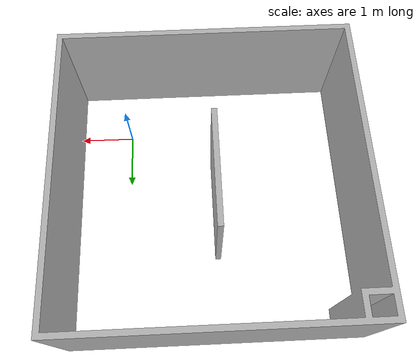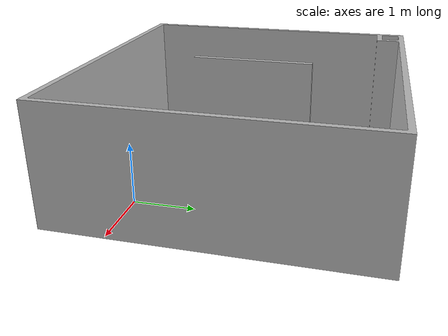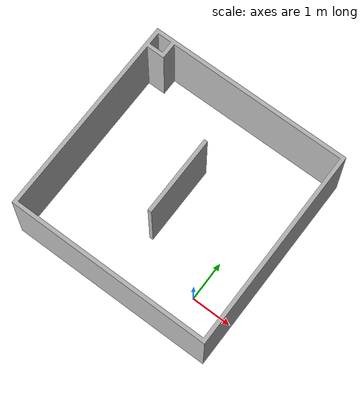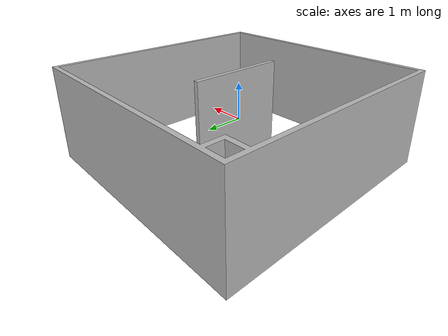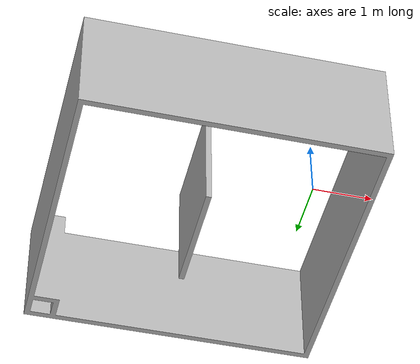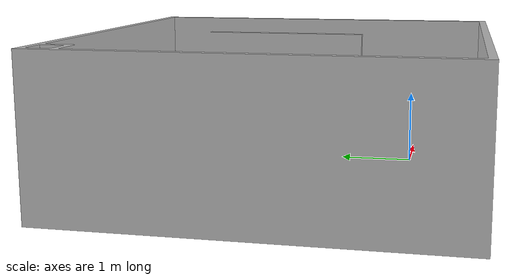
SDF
<?xml version="1.0" ?>
<sdf version="1.7">

    <model name="revit_one_object">
        <pose>0 0 0 0 0 0</pose>
        <static>true</static>
        <link name="link">
            <collision name="collision">
                <geometry>
                    <mesh>
                        <uri>model://revit_one_object/meshes/revit_one_object.stl</uri>
                        <scale>0.001 0.001 0.001</scale>
                    </mesh>
                </geometry>
            </collision>

            <visual name='visual'>
                <geometry>
                    <mesh>
                        <uri>model://revit_one_object/meshes/revit_one_object.stl</uri>
                        <scale>0.001 0.001 0.001</scale>
                    </mesh>
                </geometry>
            </visual>
        </link>
    </model>
</sdf>
